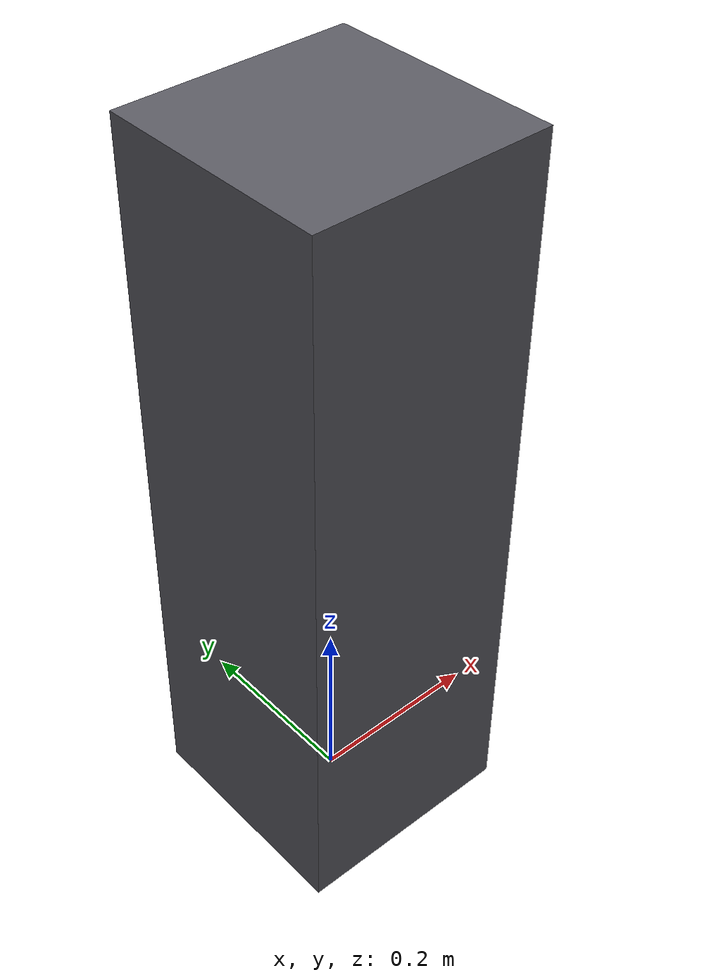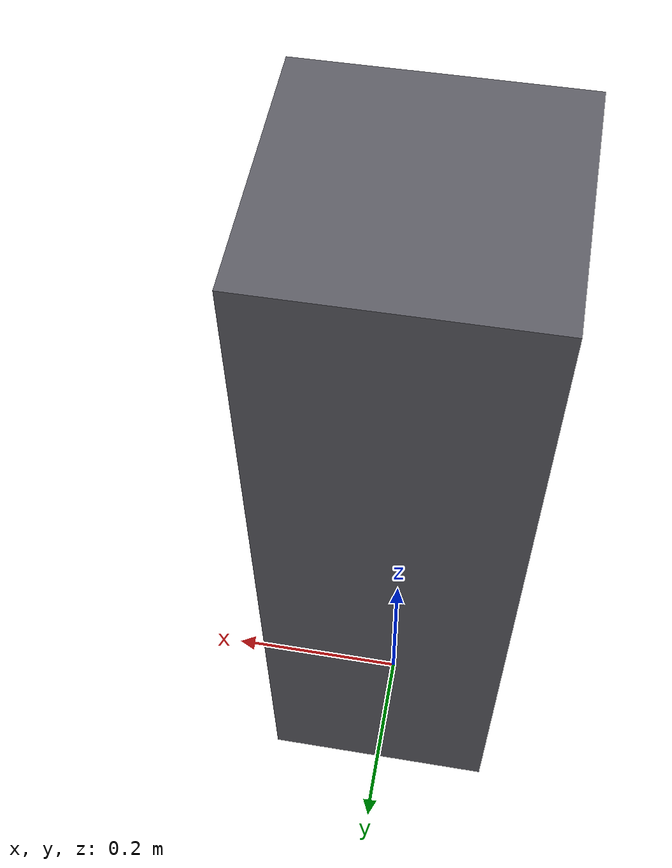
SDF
<?xml version="1.0" ?>
<sdf version="1.6">
  <model name="pick_stand">
    <static>true</static>
    <link name="stand">
      <collision name="collision">
        <pose>0 0 0.4 0 0 0</pose>
        <geometry>
          <box>
            <size>0.25 0.25 0.8</size>
          </box>
        </geometry>
        <surface>
          <bounce>
            <restitution_coefficient>0</restitution_coefficient>
            <threshold>100000</threshold>
          </bounce>
          <!-- Lateral grip so a finger that arrives first does not skate
               the cube off the top. Lift still separates this contact. -->
          <friction>
            <ode>
              <mu>10</mu>
              <mu2>10</mu2>
            </ode>
          </friction>
          <contact>
            <ode>
              <kp>1000000</kp>
              <kd>450</kd>
              <max_vel>0.01</max_vel>
              <min_depth>0.001</min_depth>
            </ode>
          </contact>
        </surface>
      </collision>
      <visual name="visual">
        <pose>0 0 0.4 0 0 0</pose>
        <geometry>
          <box>
            <size>0.25 0.25 0.8</size>
          </box>
        </geometry>
        <material>
          <ambient>0.35 0.35 0.38 1</ambient>
          <diffuse>0.35 0.35 0.38 1</diffuse>
        </material>
      </visual>
    </link>
  </model>
</sdf>
